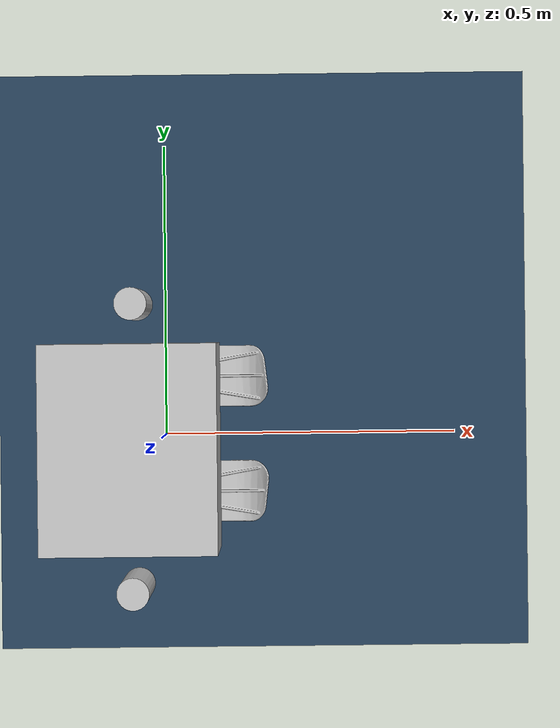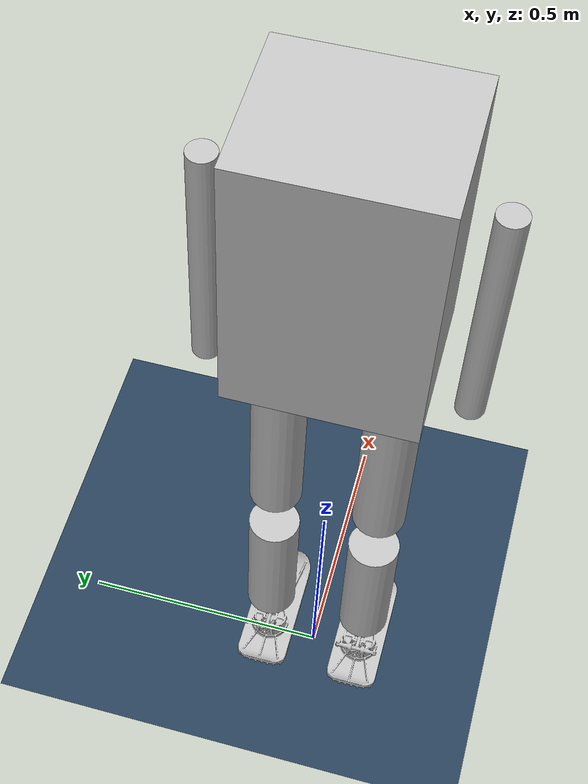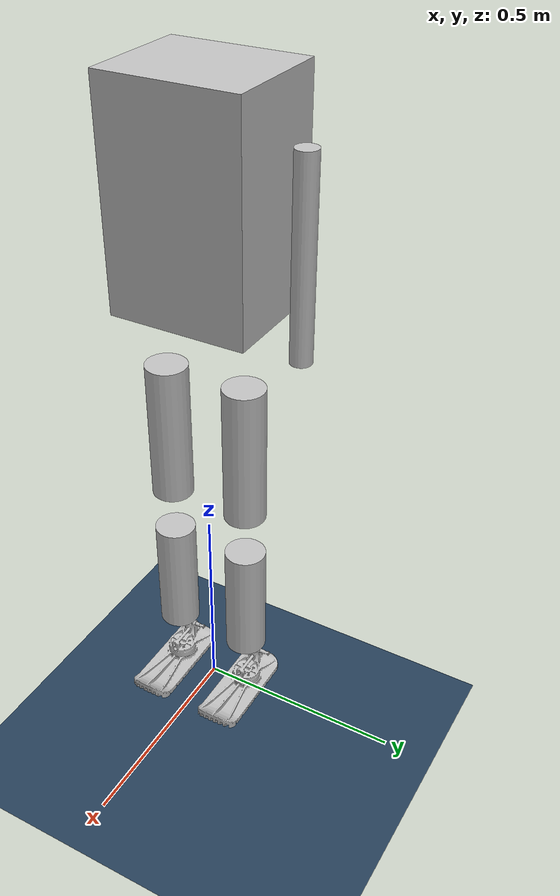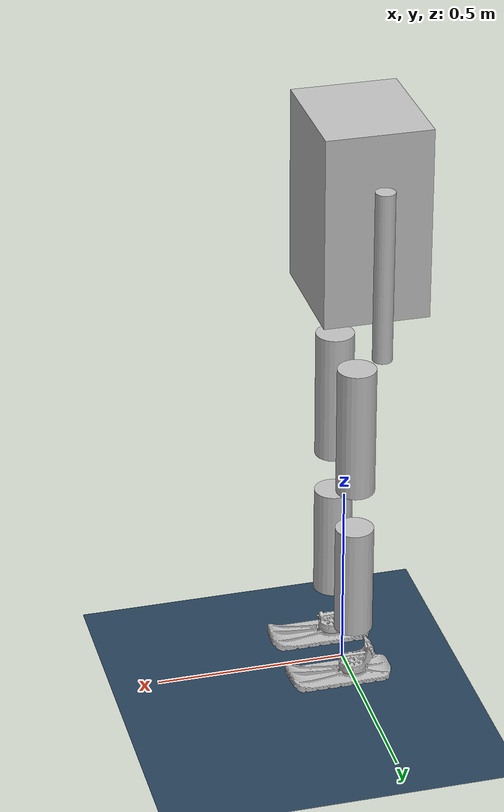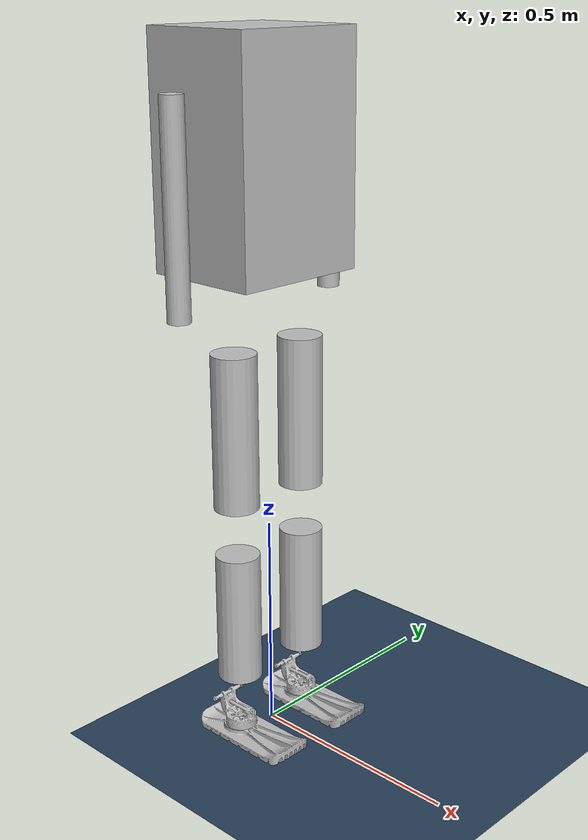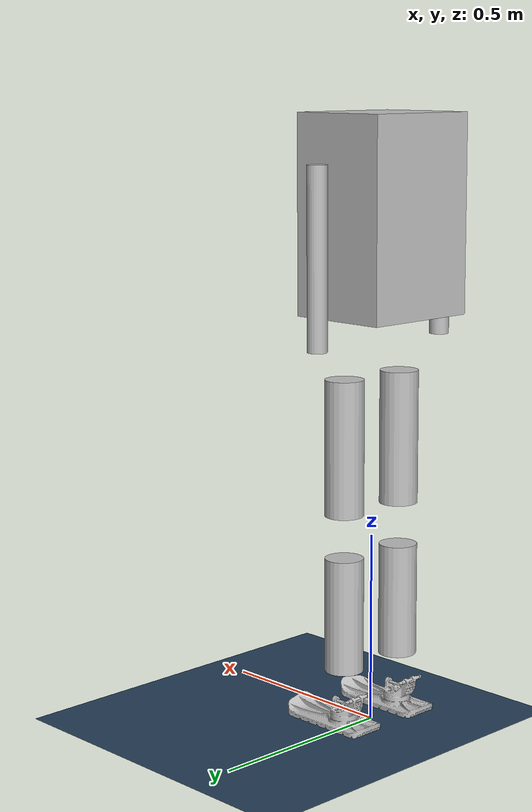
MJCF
<mujoco model="GB2_urdf_limit">
    <compiler angle="radian" meshdir="meshes/" />
    <size njmax="500" nconmax="100" />

    <default>
        <joint limited='true' />
        <motor ctrllimited='true' />
        <geom condim='4' contype="1" conaffinity="15" solref='0.001 2' friction='0.9 0.2 0.2'
        />
        <equality solref='0.001 2' />
        <default class='visualgeom'>
            <geom material='visualgeom' condim='1' contype='0' conaffinity='0' />
        </default>
        <default class='visualgeom2'>
            <geom material='visualgeom2' condim='1' contype='0' conaffinity='0' />
        </default>
        <default class='obstacle'>
            <geom material='obstacle' condim='3' contype='1' conaffinity='15' />
        </default>
        <default class='leg_joint_param'>
            <joint damping="0.01" frictionloss="0.01" armature="0.01" />
        </default>
    </default>
    <asset>
        <!-- Set ground -->
        <texture name="grid" type="2d" builtin="checker" width="512" height="512" rgb1=".1 .2 .3"
            rgb2=".2 .3 .4" />
        <material name="grid" texture="grid" texrepeat="1 1" texuniform="true" reflectance=".2" />
    </asset>

    <option timestep="0.001" integrator="RK4">
        <flag sensornoise="enable" frictionloss="enable" />
    </option>

    <visual>
        <map force="0.1" zfar="30" />
        <rgba haze="0.15 0.25 0.35 1" />
        <global offwidth="2560" offheight="1440" elevation="-30" azimuth="120" />
    </visual>

    <asset>
        <mesh name="torso" file="torso.stl" />

        <mesh name="lhip1" file="lhip1.stl" />
        <mesh name="lhip2" file="lhip2.stl" />
        <mesh name="lhip3" file="lhip3.stl" />
        <mesh name="lknee" file="lknee.stl" />
        <mesh name="lankle1" file="lankle1.stl" />
        <mesh name="lankle2" file="lankle2.stl" />
        <mesh name="lshoulder" file="lshoulder.stl" />

        <mesh name="rhip1" file="rhip1.stl" />
        <mesh name="rhip2" file="rhip2.stl" />
        <mesh name="rhip3" file="rhip3.stl" />
        <mesh name="rknee" file="rknee.stl" />
        <mesh name="rankle1" file="rankle1.stl" />
        <mesh name="rankle2" file="rankle2.stl" />
        <mesh name="rshoulder" file="rshoulder.stl" />
    </asset>
    <worldbody>
        <!-- Main Light Source -->
        <light name="main_light" diffuse="2 2 2" specular="0.5 0.5 0.5" pos="0 0 40" dir="0 0 -1"
            castshadow="true" />
        <!-- Auxiliary Light Sources-->
        <light name="aux_light1" diffuse=".8 .8 .8" pos=" 10 0 1" dir="-1 0 0" castshadow="false" />
        <light name="aux_light2" diffuse=".8 .8 .8" pos="-10 0 1" dir=" 1 0 0" castshadow="false" />
        <light name="aux_light3" diffuse=".8 .8 .8" pos="0  10 1" dir="0 -1 0" castshadow="false" />
        <light name="aux_light4" diffuse=".8 .8 .8" pos="0 -10 1" dir="0  1 0" castshadow="false" />
        <!-- Floor -->
        <geom name="floor" type="plane" size="10 10 0.05" material="grid" />
        <body name="torso" pos="0 0 1.10">
            <freejoint name="torso" />
            <inertial pos="-0.010072 -0.001093 0.191269" mass="24.987113"
                fullinertia="0.580926 0.423278 0.279351 0.001305 -0.044142 -0.000670 " />
            <geom size="0.135 0.16 0.25" pos="-0.03 0 0.225" type="box"
                rgba="0.752941 0.752941 0.752941 1" />
            <site name="imu_site" pos="0 0 0" size="0.02" rgba="1 0 0 1" type="sphere" />

            <body name="left_hip_yaw_link" pos="-3.2657e-05 0.1 -0.011">
                <inertial pos="-0.078509 -4e-06 -0.081791"
                    quat="0.312936 0.634303 0.633788 0.313119"
                    mass="2.38958" diaginertia="0.011987 0.0111943 0.00318774" />
                <joint name="left_hip_yaw_joint" pos="0 0 0" axis="0 0 1" limited="true"
                    range="-0.5 0.5" />
                <body name="left_hip_roll_link" pos="0.001 0 -0.103">
                    <inertial pos="-0.003666 0.001437 2e-06"
                        quat="0.0151806 0.706944 -0.0151806 0.706944" mass="2.493025"
                        diaginertia="0.003755 0.00345456 0.00315144" />
                    <joint name="left_hip_roll_joint" pos="0 0 0" axis="1 0 0" limited="true"
                        range="-0.25 0.5" />
                    <body name="left_hip_pitch_link" pos="0 0 0">
                        <inertial pos="0.000491 0.002117 -0.216944"
                            quat="0.999947 0.0102824 -0.000635758 -0.000453779" mass="2.46673"
                            diaginertia="0.060760 0.058972 0.006872" />
                        <joint name="left_hip_pitch_joint" pos="0 0 0" axis="0 1 0" limited="true"
                            range="-1.57 0.8" />
                        <geom size="0.05 0.175" pos="0 0 -0.24" type="cylinder"
                            rgba="0.752941 0.752941 0.752941 1" />
                        <body name="left_knee_link" pos="0 0.0001 -0.4515">
                            <inertial pos="-0.003765 -0.00093 -0.229728"
                                quat="0.999323 -0.00545308 -0.0262824 -0.0251406" mass="2.69388"
                                diaginertia="0.039108 0.0383564 0.00320066" />
                            <joint name="left_knee_joint" pos="0 0 0" axis="0 1 0" limited="true"
                                range="0.09 1.9" />
                            <geom size="0.05 0.15" pos="0 0 -0.225" type="cylinder"
                                rgba="0.752941 0.752941 0.752941 1" />
                            <body name="left_ankle_pitch_link" pos="0 0 -0.45">
                                <inertial pos="-0.002774 0.000432 -0.006398"
                                    quat="0.438819 0.554471 0.554471 0.438819" mass="0.099238"
                                    diaginertia="2.5e-05 2.42361e-05 1.97639e-05" />
                                <joint name="left_ankle_pitch_joint" pos="0 0 0" axis="0 1 0"
                                    limited="true" range="-1.1 0.9" />
                                <body name="left_ankle_roll_link" pos="0 0 -0.015">
                                    <inertial pos="0.01803 -0.000161 -0.037272"
                                        quat="0.000822343 0.670875 0.00521497 0.741552"
                                        mass="1.26562"
                                        diaginertia="0.00572126 0.00538116 0.00117958" />
                                    <joint name="left_ankle_roll_joint" pos="0 0 0" axis="1 0 0"
                                        limited="true" range="-0.314 0.314" />
                                    <geom type="mesh" rgba="0.752941 0.752941 0.752941 1"
                                        mesh="lankle2" />
                                </body>
                            </body>
                        </body>
                    </body>
                </body>
            </body>
            <body name="left_shoulder_pitch_link" pos="-0.026283 0.136 0.391">
                <inertial pos="1.7e-05 0.08658 -0.122198"
                    quat="0.999964 -0.00837945 6.62209e-05 0.00141515" mass="0.955826"
                    diaginertia="0.019115 0.0191032 0.000721837" />
                <joint name="left_shoulder_pitch_joint" pos="0 0 0" axis="0 1 0" limited="true"
                    range="-3.14 3.14" />
                <geom size="0.025 0.225" pos="0 0.085 -0.26" type="cylinder"
                    rgba="0.752941 0.752941 0.752941 1" />
            </body>
            <body name="right_hip_yaw_link" pos="-3.2657e-05 -0.1 -0.011">
                <inertial pos="-0.078509 -4e-06 -0.081791"
                    quat="0.312936 0.634303 0.633788 0.313119"
                    mass="2.38958" diaginertia="0.011987 0.0111943 0.00318774" />
                <joint name="right_hip_yaw_joint" pos="0 0 0" axis="0 0 1" limited="true"
                    range="-0.5 0.5" />
                <body name="right_hip_roll_link" pos="0.001 0 -0.103">
                    <inertial pos="-0.003613 -0.002804 -4.9e-05"
                        quat="-0.0339114 0.708501 0.0418884 0.703649" mass="2.49302"
                        diaginertia="0.00398908 0.0035721 0.00338382" />
                    <joint name="right_hip_roll_joint" pos="0 0 0" axis="1 0 0" limited="true"
                        range="-0.5 0.25" />
                    <body name="right_hip_pitch_link" pos="0 0 0">
                        <inertial pos="0.000491 -0.002117 -0.216944"
                            quat="0.999953 -0.00971676 -0.000638381 0.000192479" mass="2.46673"
                            diaginertia="0.0607601 0.0589917 0.00685222" />
                        <joint name="right_hip_pitch_joint" pos="0 0 0" axis="0 1 0" limited="true"
                            range="-1.57 0.8" />
                        <geom size="0.05 0.175" pos="0 0 -0.24" type="cylinder"
                            rgba="0.752941 0.752941 0.752941 1" />
                        <body name="right_knee_link" pos="0 -0.0001 -0.4515">
                            <inertial pos="-0.003764 -0.00093 -0.229728"
                                quat="0.999323 -0.00545204 -0.0262826 -0.0251738" mass="2.69388"
                                diaginertia="0.039108 0.0383574 0.00320066" />
                            <joint name="right_knee_joint" pos="0 0 0" axis="0 1 0" limited="true"
                                range="0.09 1.9" />
                            <geom size="0.05 0.15" pos="0 0 -0.225" type="cylinder"
                                rgba="0.752941 0.752941 0.752941 1" />
                            <body name="right_ankle_pitch_link" pos="0 0 -0.45">
                                <inertial pos="-0.002774 0.000432 -0.006398"
                                    quat="0.438819 0.554471 0.554471 0.438819" mass="0.099238"
                                    diaginertia="2.5e-05 2.42361e-05 1.97639e-05" />
                                <joint name="right_ankle_pitch_joint" pos="0 0 0" axis="0 1 0"
                                    limited="true" range="-1.1 0.9" />
                                <body name="right_ankle_roll_link" pos="0 0 -0.015">
                                    <inertial pos="0.01803 0.000161 -0.037272"
                                        quat="-0.000822343 0.670875 -0.00521497 0.741552"
                                        mass="1.26562"
                                        diaginertia="0.00572126 0.00538116 0.00117958" />
                                    <joint name="right_ankle_roll_joint" pos="0 0 0" axis="1 0 0"
                                        limited="true" range="-0.314 0.314" />
                                    <geom type="mesh" rgba="0.752941 0.752941 0.752941 1"
                                        mesh="rankle2" />
                                </body>
                            </body>
                        </body>
                    </body>
                </body>
            </body>
            <body name="right_shoulder_pitch_link" pos="-0.026283 -0.136 0.391">
                <inertial pos="-1.7e-05 -0.07758 -0.122198"
                    quat="0.999964 0.00837945 -6.62209e-05 0.00141515" mass="0.955826"
                    diaginertia="0.019115 0.0191032 0.000721837" />
                <joint name="right_shoulder_pitch_joint" pos="0 0 0" axis="0 1 0" limited="true"
                    range="-3.14 3.14" />
                <geom size="0.025 0.225" pos="0 -0.085 -0.26" type="cylinder"
                    rgba="0.752941 0.752941 0.752941 1" />
            </body>
        </body>
    </worldbody>

    <actuator>
        <motor name="left_hip_yaw_joint" joint="left_hip_yaw_joint" ctrlrange="-200 200" />
        <motor name="left_shoulder_pitch_joint" joint="left_shoulder_pitch_joint"
            ctrlrange="-200 200" />
        <motor name="right_hip_yaw_joint" joint="right_hip_yaw_joint" ctrlrange="-200 200" />
        <motor name="right_shoulder_pitch_joint" joint="right_shoulder_pitch_joint"
            ctrlrange="-200 200" />
        <motor name="left_hip_roll_joint" joint="left_hip_roll_joint" ctrlrange="-200 200" />
        <motor name="right_hip_roll_joint" joint="right_hip_roll_joint" ctrlrange="-200 200" />

        <motor name="left_hip_pitch_joint" joint="left_hip_pitch_joint" ctrlrange="-200 200" />
        <motor name="right_hip_pitch_joint" joint="right_hip_pitch_joint" ctrlrange="-200 200" />
        <motor name="left_knee_joint" joint="left_knee_joint" ctrlrange="-200 200" />
        <motor name="right_knee_joint" joint="right_knee_joint" ctrlrange="-200 200" />
        <motor name="left_ankle_pitch_joint" joint="left_ankle_pitch_joint" ctrlrange="-200 200" />
        <motor name="right_ankle_pitch_joint" joint="right_ankle_pitch_joint" ctrlrange="-200 200" />
        <motor name="left_ankle_roll_joint" joint="left_ankle_roll_joint" ctrlrange="-200 200" />
        <motor name="right_ankle_roll_joint" joint="right_ankle_roll_joint" ctrlrange="-200 200" />

    </actuator>
    <sensor>
        <!--组合IMU-->
        <accelerometer name="imu_acc" site="imu_site" />
        <gyro name="imu_gyro" site="imu_site" />
        <framepos name="imu_pos" objtype="site" objname="imu_site" />
        <framelinvel name="imu_linvel" objtype="site" objname="imu_site" />
    </sensor>
</mujoco>
